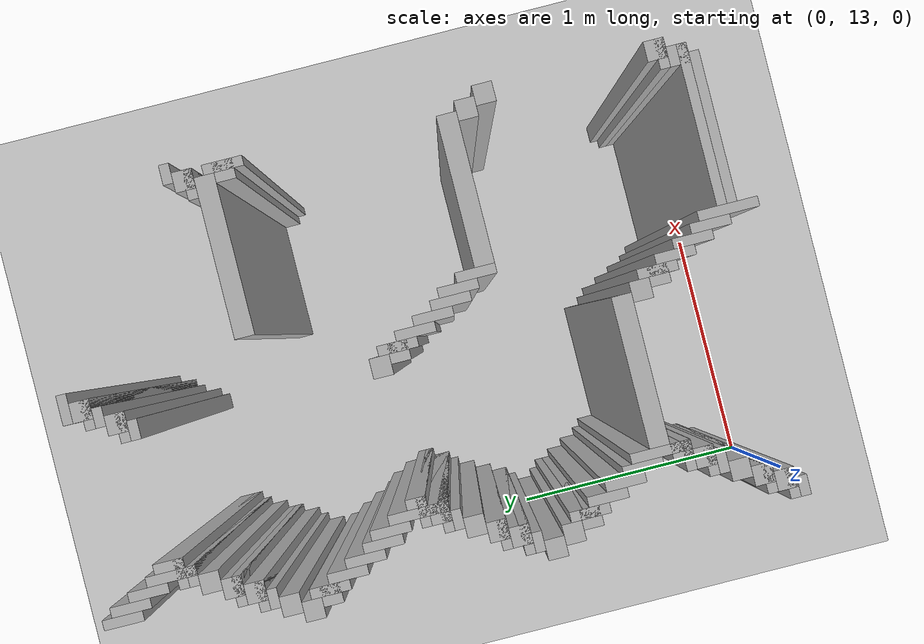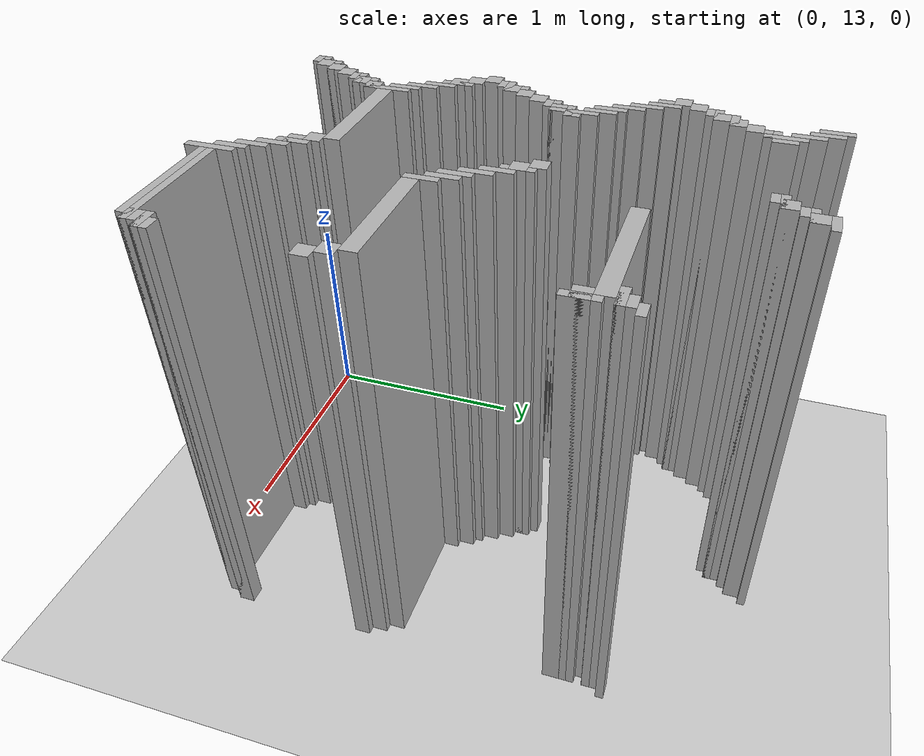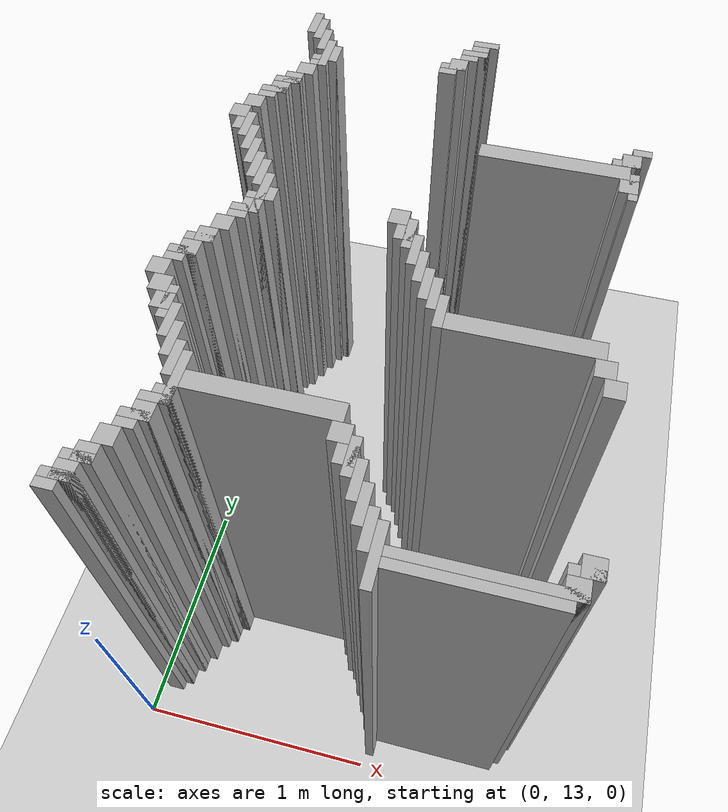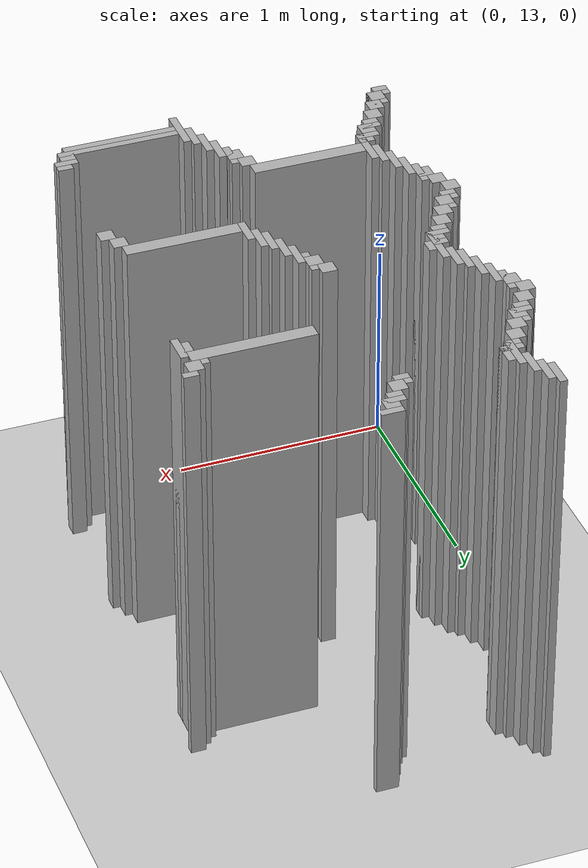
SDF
<sdf version="1.6">
 <world name="slam_world">
  <model name="ground_plane">
   <static>true</static>
   <link name="link">
    <collision name="collision">
     <geometry><plane><normal>0 0 1</normal><size>100 100</size></plane></geometry>
    </collision>
    <visual name="visual">
     <geometry><plane><normal>0 0 1</normal><size>100 100</size></plane></geometry>
     <material>
      <ambient>0.8 0.8 0.8 1</ambient>
      <diffuse>0.8 0.8 0.8 1</diffuse>
      <specular>0.8 0.8 0.8 1</specular>
     </material>
    </visual>
   </link>
  </model>
  <model name="wall_623">
   <static>true</static>
   <pose>0.191415313225058 15.452436194895592 1.0 0 0 0</pose>
   <link name="link">
    <collision name="collision">
     <geometry><box><size>0.03480278422273782 0.13921113689095127 2.0</size></box></geometry>
    </collision>
    <visual name="visual">
     <geometry><box><size>0.03480278422273782 0.13921113689095127 2.0</size></box></geometry>
     <material><ambient>0.5 0.5 0.5 1</ambient><diffuse>0.7 0.7 0.7 1</diffuse></material>
    </visual>
   </link>
  </model>
  <model name="wall_640">
   <static>true</static>
   <pose>0.2262180974477958 15.417633410672853 1.0 0 0 0</pose>
   <link name="link">
    <collision name="collision">
     <geometry><box><size>0.03480278422273782 0.13921113689095127 2.0</size></box></geometry>
    </collision>
    <visual name="visual">
     <geometry><box><size>0.03480278422273782 0.13921113689095127 2.0</size></box></geometry>
     <material><ambient>0.5 0.5 0.5 1</ambient><diffuse>0.7 0.7 0.7 1</diffuse></material>
    </visual>
   </link>
  </model>
  <model name="wall_641">
   <static>true</static>
   <pose>0.9222737819025522 15.46983758700696 1.0 0 0 0</pose>
   <link name="link">
    <collision name="collision">
     <geometry><box><size>0.10440835266821345 0.03480278422273782 2.0</size></box></geometry>
    </collision>
    <visual name="visual">
     <geometry><box><size>0.10440835266821345 0.03480278422273782 2.0</size></box></geometry>
     <material><ambient>0.5 0.5 0.5 1</ambient><diffuse>0.7 0.7 0.7 1</diffuse></material>
    </visual>
   </link>
  </model>
  <model name="wall_657">
   <static>true</static>
   <pose>0.9048723897911832 15.417633410672853 1.0 0 0 0</pose>
   <link name="link">
    <collision name="collision">
     <geometry><box><size>0.06960556844547564 0.06960556844547564 2.0</size></box></geometry>
    </collision>
    <visual name="visual">
     <geometry><box><size>0.06960556844547564 0.06960556844547564 2.0</size></box></geometry>
     <material><ambient>0.5 0.5 0.5 1</ambient><diffuse>0.7 0.7 0.7 1</diffuse></material>
    </visual>
   </link>
  </model>
  <model name="wall_669">
   <static>true</static>
   <pose>0.2610208816705336 15.348027842227378 1.0 0 0 0</pose>
   <link name="link">
    <collision name="collision">
     <geometry><box><size>0.03480278422273782 0.13921113689095127 2.0</size></box></geometry>
    </collision>
    <visual name="visual">
     <geometry><box><size>0.03480278422273782 0.13921113689095127 2.0</size></box></geometry>
     <material><ambient>0.5 0.5 0.5 1</ambient><diffuse>0.7 0.7 0.7 1</diffuse></material>
    </visual>
   </link>
  </model>
  <model name="wall_670">
   <static>true</static>
   <pose>0.8874709976798143 15.400232018561484 1.0 0 0 0</pose>
   <link name="link">
    <collision name="collision">
     <geometry><box><size>0.10440835266821345 0.03480278422273782 2.0</size></box></geometry>
    </collision>
    <visual name="visual">
     <geometry><box><size>0.10440835266821345 0.03480278422273782 2.0</size></box></geometry>
     <material><ambient>0.5 0.5 0.5 1</ambient><diffuse>0.7 0.7 0.7 1</diffuse></material>
    </visual>
   </link>
  </model>
  <model name="wall_686">
   <static>true</static>
   <pose>0.8700696055684455 15.365429234338746 1.0 0 0 0</pose>
   <link name="link">
    <collision name="collision">
     <geometry><box><size>0.06960556844547564 0.03480278422273782 2.0</size></box></geometry>
    </collision>
    <visual name="visual">
     <geometry><box><size>0.06960556844547564 0.03480278422273782 2.0</size></box></geometry>
     <material><ambient>0.5 0.5 0.5 1</ambient><diffuse>0.7 0.7 0.7 1</diffuse></material>
    </visual>
   </link>
  </model>
  <model name="wall_694">
   <static>true</static>
   <pose>0.29582366589327147 15.261020881670532 1.0 0 0 0</pose>
   <link name="link">
    <collision name="collision">
     <geometry><box><size>0.03480278422273782 0.17401392111368907 2.0</size></box></geometry>
    </collision>
    <visual name="visual">
     <geometry><box><size>0.03480278422273782 0.17401392111368907 2.0</size></box></geometry>
     <material><ambient>0.5 0.5 0.5 1</ambient><diffuse>0.7 0.7 0.7 1</diffuse></material>
    </visual>
   </link>
  </model>
  <model name="wall_695">
   <static>true</static>
   <pose>0.8352668213457076 15.31322505800464 1.0 0 0 0</pose>
   <link name="link">
    <collision name="collision">
     <geometry><box><size>0.06960556844547564 0.06960556844547564 2.0</size></box></geometry>
    </collision>
    <visual name="visual">
     <geometry><box><size>0.06960556844547564 0.06960556844547564 2.0</size></box></geometry>
     <material><ambient>0.5 0.5 0.5 1</ambient><diffuse>0.7 0.7 0.7 1</diffuse></material>
    </visual>
   </link>
  </model>
  <model name="wall_711">
   <static>true</static>
   <pose>0.3306264501160093 15.261020881670532 1.0 0 0 0</pose>
   <link name="link">
    <collision name="collision">
     <geometry><box><size>0.03480278422273782 0.10440835266821345 2.0</size></box></geometry>
    </collision>
    <visual name="visual">
     <geometry><box><size>0.03480278422273782 0.10440835266821345 2.0</size></box></geometry>
     <material><ambient>0.5 0.5 0.5 1</ambient><diffuse>0.7 0.7 0.7 1</diffuse></material>
    </visual>
   </link>
  </model>
  <model name="wall_712">
   <static>true</static>
   <pose>0.8178654292343387 15.295823665893272 1.0 0 0 0</pose>
   <link name="link">
    <collision name="collision">
     <geometry><box><size>0.10440835266821345 0.03480278422273782 2.0</size></box></geometry>
    </collision>
    <visual name="visual">
     <geometry><box><size>0.10440835266821345 0.03480278422273782 2.0</size></box></geometry>
     <material><ambient>0.5 0.5 0.5 1</ambient><diffuse>0.7 0.7 0.7 1</diffuse></material>
    </visual>
   </link>
  </model>
  <model name="wall_728">
   <static>true</static>
   <pose>0.8004640371229698 15.261020881670532 1.0 0 0 0</pose>
   <link name="link">
    <collision name="collision">
     <geometry><box><size>0.06960556844547564 0.03480278422273782 2.0</size></box></geometry>
    </collision>
    <visual name="visual">
     <geometry><box><size>0.06960556844547564 0.03480278422273782 2.0</size></box></geometry>
     <material><ambient>0.5 0.5 0.5 1</ambient><diffuse>0.7 0.7 0.7 1</diffuse></material>
    </visual>
   </link>
  </model>
  <model name="wall_738">
   <static>true</static>
   <pose>0.29582366589327147 15.226218097447795 1.0 0 0 0</pose>
   <link name="link">
    <collision name="collision">
     <geometry><box><size>0.10440835266821345 0.03480278422273782 2.0</size></box></geometry>
    </collision>
    <visual name="visual">
     <geometry><box><size>0.10440835266821345 0.03480278422273782 2.0</size></box></geometry>
     <material><ambient>0.5 0.5 0.5 1</ambient><diffuse>0.7 0.7 0.7 1</diffuse></material>
    </visual>
   </link>
  </model>
  <model name="wall_749">
   <static>true</static>
   <pose>0.27842227378190254 15.191415313225058 1.0 0 0 0</pose>
   <link name="link">
    <collision name="collision">
     <geometry><box><size>0.06960556844547564 0.03480278422273782 2.0</size></box></geometry>
    </collision>
    <visual name="visual">
     <geometry><box><size>0.06960556844547564 0.03480278422273782 2.0</size></box></geometry>
     <material><ambient>0.5 0.5 0.5 1</ambient><diffuse>0.7 0.7 0.7 1</diffuse></material>
    </visual>
   </link>
  </model>
  <model name="wall_761">
   <static>true</static>
   <pose>0.24361948955916474 15.139211136890951 1.0 0 0 0</pose>
   <link name="link">
    <collision name="collision">
     <geometry><box><size>0.06960556844547564 0.06960556844547564 2.0</size></box></geometry>
    </collision>
    <visual name="visual">
     <geometry><box><size>0.06960556844547564 0.06960556844547564 2.0</size></box></geometry>
     <material><ambient>0.5 0.5 0.5 1</ambient><diffuse>0.7 0.7 0.7 1</diffuse></material>
    </visual>
   </link>
  </model>
  <model name="wall_773">
   <static>true</static>
   <pose>0.2088167053364269 15.069605568445475 1.0 0 0 0</pose>
   <link name="link">
    <collision name="collision">
     <geometry><box><size>0.06960556844547564 0.06960556844547564 2.0</size></box></geometry>
    </collision>
    <visual name="visual">
     <geometry><box><size>0.06960556844547564 0.06960556844547564 2.0</size></box></geometry>
     <material><ambient>0.5 0.5 0.5 1</ambient><diffuse>0.7 0.7 0.7 1</diffuse></material>
    </visual>
   </link>
  </model>
  <model name="wall_785">
   <static>true</static>
   <pose>0.191415313225058 15.052204176334106 1.0 0 0 0</pose>
   <link name="link">
    <collision name="collision">
     <geometry><box><size>0.10440835266821345 0.03480278422273782 2.0</size></box></geometry>
    </collision>
    <visual name="visual">
     <geometry><box><size>0.10440835266821345 0.03480278422273782 2.0</size></box></geometry>
     <material><ambient>0.5 0.5 0.5 1</ambient><diffuse>0.7 0.7 0.7 1</diffuse></material>
    </visual>
   </link>
  </model>
  <model name="wall_797">
   <static>true</static>
   <pose>0.17401392111368907 15.0 1.0 0 0 0</pose>
   <link name="link">
    <collision name="collision">
     <geometry><box><size>0.06960556844547564 0.06960556844547564 2.0</size></box></geometry>
    </collision>
    <visual name="visual">
     <geometry><box><size>0.06960556844547564 0.06960556844547564 2.0</size></box></geometry>
     <material><ambient>0.5 0.5 0.5 1</ambient><diffuse>0.7 0.7 0.7 1</diffuse></material>
    </visual>
   </link>
  </model>
  <model name="wall_806">
   <static>true</static>
   <pose>0.15661252900232017 14.982598607888631 1.0 0 0 0</pose>
   <link name="link">
    <collision name="collision">
     <geometry><box><size>0.10440835266821345 0.03480278422273782 2.0</size></box></geometry>
    </collision>
    <visual name="visual">
     <geometry><box><size>0.10440835266821345 0.03480278422273782 2.0</size></box></geometry>
     <material><ambient>0.5 0.5 0.5 1</ambient><diffuse>0.7 0.7 0.7 1</diffuse></material>
    </visual>
   </link>
  </model>
  <model name="wall_818">
   <static>true</static>
   <pose>0.13921113689095127 14.947795823665892 1.0 0 0 0</pose>
   <link name="link">
    <collision name="collision">
     <geometry><box><size>0.06960556844547564 0.03480278422273782 2.0</size></box></geometry>
    </collision>
    <visual name="visual">
     <geometry><box><size>0.06960556844547564 0.03480278422273782 2.0</size></box></geometry>
     <material><ambient>0.5 0.5 0.5 1</ambient><diffuse>0.7 0.7 0.7 1</diffuse></material>
    </visual>
   </link>
  </model>
  <model name="wall_819">
   <static>true</static>
   <pose>1.6009280742459395 14.947795823665892 1.0 0 0 0</pose>
   <link name="link">
    <collision name="collision">
     <geometry><box><size>0.06960556844547564 0.03480278422273782 2.0</size></box></geometry>
    </collision>
    <visual name="visual">
     <geometry><box><size>0.06960556844547564 0.03480278422273782 2.0</size></box></geometry>
     <material><ambient>0.5 0.5 0.5 1</ambient><diffuse>0.7 0.7 0.7 1</diffuse></material>
    </visual>
   </link>
  </model>
  <model name="wall_826">
   <static>true</static>
   <pose>0.10440835266821345 14.895591647331786 1.0 0 0 0</pose>
   <link name="link">
    <collision name="collision">
     <geometry><box><size>0.06960556844547564 0.06960556844547564 2.0</size></box></geometry>
    </collision>
    <visual name="visual">
     <geometry><box><size>0.06960556844547564 0.06960556844547564 2.0</size></box></geometry>
     <material><ambient>0.5 0.5 0.5 1</ambient><diffuse>0.7 0.7 0.7 1</diffuse></material>
    </visual>
   </link>
  </model>
  <model name="wall_827">
   <static>true</static>
   <pose>1.5661252900232019 14.895591647331786 1.0 0 0 0</pose>
   <link name="link">
    <collision name="collision">
     <geometry><box><size>0.06960556844547564 0.06960556844547564 2.0</size></box></geometry>
    </collision>
    <visual name="visual">
     <geometry><box><size>0.06960556844547564 0.06960556844547564 2.0</size></box></geometry>
     <material><ambient>0.5 0.5 0.5 1</ambient><diffuse>0.7 0.7 0.7 1</diffuse></material>
    </visual>
   </link>
  </model>
  <model name="wall_838">
   <static>true</static>
   <pose>1.548723897911833 14.878190255220417 1.0 0 0 0</pose>
   <link name="link">
    <collision name="collision">
     <geometry><box><size>0.10440835266821345 0.03480278422273782 2.0</size></box></geometry>
    </collision>
    <visual name="visual">
     <geometry><box><size>0.10440835266821345 0.03480278422273782 2.0</size></box></geometry>
     <material><ambient>0.5 0.5 0.5 1</ambient><diffuse>0.7 0.7 0.7 1</diffuse></material>
    </visual>
   </link>
  </model>
  <model name="wall_843">
   <static>true</static>
   <pose>0.06960556844547564 14.825986078886311 1.0 0 0 0</pose>
   <link name="link">
    <collision name="collision">
     <geometry><box><size>0.06960556844547564 0.06960556844547564 2.0</size></box></geometry>
    </collision>
    <visual name="visual">
     <geometry><box><size>0.06960556844547564 0.06960556844547564 2.0</size></box></geometry>
     <material><ambient>0.5 0.5 0.5 1</ambient><diffuse>0.7 0.7 0.7 1</diffuse></material>
    </visual>
   </link>
  </model>
  <model name="wall_844">
   <static>true</static>
   <pose>1.2877030162412992 14.825986078886311 1.0 0 0 0</pose>
   <link name="link">
    <collision name="collision">
     <geometry><box><size>0.5568445475638051 0.06960556844547564 2.0</size></box></geometry>
    </collision>
    <visual name="visual">
     <geometry><box><size>0.5568445475638051 0.06960556844547564 2.0</size></box></geometry>
     <material><ambient>0.5 0.5 0.5 1</ambient><diffuse>0.7 0.7 0.7 1</diffuse></material>
    </visual>
   </link>
  </model>
  <model name="wall_857">
   <static>true</static>
   <pose>0.12180974477958237 14.756380510440835 1.0 0 0 0</pose>
   <link name="link">
    <collision name="collision">
     <geometry><box><size>0.03480278422273782 0.13921113689095127 2.0</size></box></geometry>
    </collision>
    <visual name="visual">
     <geometry><box><size>0.03480278422273782 0.13921113689095127 2.0</size></box></geometry>
     <material><ambient>0.5 0.5 0.5 1</ambient><diffuse>0.7 0.7 0.7 1</diffuse></material>
    </visual>
   </link>
  </model>
  <model name="wall_858">
   <static>true</static>
   <pose>1.5835266821345706 14.756380510440835 1.0 0 0 0</pose>
   <link name="link">
    <collision name="collision">
     <geometry><box><size>0.03480278422273782 0.13921113689095127 2.0</size></box></geometry>
    </collision>
    <visual name="visual">
     <geometry><box><size>0.03480278422273782 0.13921113689095127 2.0</size></box></geometry>
     <material><ambient>0.5 0.5 0.5 1</ambient><diffuse>0.7 0.7 0.7 1</diffuse></material>
    </visual>
   </link>
  </model>
  <model name="wall_868">
   <static>true</static>
   <pose>0.10440835266821345 14.756380510440835 1.0 0 0 0</pose>
   <link name="link">
    <collision name="collision">
     <geometry><box><size>0.06960556844547564 0.06960556844547564 2.0</size></box></geometry>
    </collision>
    <visual name="visual">
     <geometry><box><size>0.06960556844547564 0.06960556844547564 2.0</size></box></geometry>
     <material><ambient>0.5 0.5 0.5 1</ambient><diffuse>0.7 0.7 0.7 1</diffuse></material>
    </visual>
   </link>
  </model>
  <model name="wall_869">
   <static>true</static>
   <pose>1.5661252900232019 14.756380510440835 1.0 0 0 0</pose>
   <link name="link">
    <collision name="collision">
     <geometry><box><size>0.06960556844547564 0.06960556844547564 2.0</size></box></geometry>
    </collision>
    <visual name="visual">
     <geometry><box><size>0.06960556844547564 0.06960556844547564 2.0</size></box></geometry>
     <material><ambient>0.5 0.5 0.5 1</ambient><diffuse>0.7 0.7 0.7 1</diffuse></material>
    </visual>
   </link>
  </model>
  <model name="wall_880">
   <static>true</static>
   <pose>0.15661252900232017 14.68677494199536 1.0 0 0 0</pose>
   <link name="link">
    <collision name="collision">
     <geometry><box><size>0.03480278422273782 0.13921113689095127 2.0</size></box></geometry>
    </collision>
    <visual name="visual">
     <geometry><box><size>0.03480278422273782 0.13921113689095127 2.0</size></box></geometry>
     <material><ambient>0.5 0.5 0.5 1</ambient><diffuse>0.7 0.7 0.7 1</diffuse></material>
    </visual>
   </link>
  </model>
  <model name="wall_900">
   <static>true</static>
   <pose>0.191415313225058 14.617169373549883 1.0 0 0 0</pose>
   <link name="link">
    <collision name="collision">
     <geometry><box><size>0.03480278422273782 0.13921113689095127 2.0</size></box></geometry>
    </collision>
    <visual name="visual">
     <geometry><box><size>0.03480278422273782 0.13921113689095127 2.0</size></box></geometry>
     <material><ambient>0.5 0.5 0.5 1</ambient><diffuse>0.7 0.7 0.7 1</diffuse></material>
    </visual>
   </link>
  </model>
  <model name="wall_912">
   <static>true</static>
   <pose>0.2262180974477958 14.547563805104408 1.0 0 0 0</pose>
   <link name="link">
    <collision name="collision">
     <geometry><box><size>0.03480278422273782 0.13921113689095127 2.0</size></box></geometry>
    </collision>
    <visual name="visual">
     <geometry><box><size>0.03480278422273782 0.13921113689095127 2.0</size></box></geometry>
     <material><ambient>0.5 0.5 0.5 1</ambient><diffuse>0.7 0.7 0.7 1</diffuse></material>
    </visual>
   </link>
  </model>
  <model name="wall_924">
   <static>true</static>
   <pose>0.2610208816705336 14.512761020881669 1.0 0 0 0</pose>
   <link name="link">
    <collision name="collision">
     <geometry><box><size>0.03480278422273782 0.13921113689095127 2.0</size></box></geometry>
    </collision>
    <visual name="visual">
     <geometry><box><size>0.03480278422273782 0.13921113689095127 2.0</size></box></geometry>
     <material><ambient>0.5 0.5 0.5 1</ambient><diffuse>0.7 0.7 0.7 1</diffuse></material>
    </visual>
   </link>
  </model>
  <model name="wall_943">
   <static>true</static>
   <pose>0.29582366589327147 14.408352668213457 1.0 0 0 0</pose>
   <link name="link">
    <collision name="collision">
     <geometry><box><size>0.03480278422273782 0.2088167053364269 2.0</size></box></geometry>
    </collision>
    <visual name="visual">
     <geometry><box><size>0.03480278422273782 0.2088167053364269 2.0</size></box></geometry>
     <material><ambient>0.5 0.5 0.5 1</ambient><diffuse>0.7 0.7 0.7 1</diffuse></material>
    </visual>
   </link>
  </model>
  <model name="wall_962">
   <static>true</static>
   <pose>0.3306264501160093 14.408352668213457 1.0 0 0 0</pose>
   <link name="link">
    <collision name="collision">
     <geometry><box><size>0.03480278422273782 0.06960556844547564 2.0</size></box></geometry>
    </collision>
    <visual name="visual">
     <geometry><box><size>0.03480278422273782 0.06960556844547564 2.0</size></box></geometry>
     <material><ambient>0.5 0.5 0.5 1</ambient><diffuse>0.7 0.7 0.7 1</diffuse></material>
    </visual>
   </link>
  </model>
  <model name="wall_963">
   <static>true</static>
   <pose>0.8004640371229698 14.408352668213457 1.0 0 0 0</pose>
   <link name="link">
    <collision name="collision">
     <geometry><box><size>0.06960556844547564 0.06960556844547564 2.0</size></box></geometry>
    </collision>
    <visual name="visual">
     <geometry><box><size>0.06960556844547564 0.06960556844547564 2.0</size></box></geometry>
     <material><ambient>0.5 0.5 0.5 1</ambient><diffuse>0.7 0.7 0.7 1</diffuse></material>
    </visual>
   </link>
  </model>
  <model name="wall_977">
   <static>true</static>
   <pose>0.29582366589327147 14.390951276102088 1.0 0 0 0</pose>
   <link name="link">
    <collision name="collision">
     <geometry><box><size>0.10440835266821345 0.03480278422273782 2.0</size></box></geometry>
    </collision>
    <visual name="visual">
     <geometry><box><size>0.10440835266821345 0.03480278422273782 2.0</size></box></geometry>
     <material><ambient>0.5 0.5 0.5 1</ambient><diffuse>0.7 0.7 0.7 1</diffuse></material>
    </visual>
   </link>
  </model>
  <model name="wall_978">
   <static>true</static>
   <pose>0.8526682134570766 14.33874709976798 1.0 0 0 0</pose>
   <link name="link">
    <collision name="collision">
     <geometry><box><size>0.03480278422273782 0.13921113689095127 2.0</size></box></geometry>
    </collision>
    <visual name="visual">
     <geometry><box><size>0.03480278422273782 0.13921113689095127 2.0</size></box></geometry>
     <material><ambient>0.5 0.5 0.5 1</ambient><diffuse>0.7 0.7 0.7 1</diffuse></material>
    </visual>
   </link>
  </model>
  <model name="wall_991">
   <static>true</static>
   <pose>0.27842227378190254 14.33874709976798 1.0 0 0 0</pose>
   <link name="link">
    <collision name="collision">
     <geometry><box><size>0.06960556844547564 0.06960556844547564 2.0</size></box></geometry>
    </collision>
    <visual name="visual">
     <geometry><box><size>0.06960556844547564 0.06960556844547564 2.0</size></box></geometry>
     <material><ambient>0.5 0.5 0.5 1</ambient><diffuse>0.7 0.7 0.7 1</diffuse></material>
    </visual>
   </link>
  </model>
  <model name="wall_992">
   <static>true</static>
   <pose>0.8352668213457076 14.33874709976798 1.0 0 0 0</pose>
   <link name="link">
    <collision name="collision">
     <geometry><box><size>0.06960556844547564 0.06960556844547564 2.0</size></box></geometry>
    </collision>
    <visual name="visual">
     <geometry><box><size>0.06960556844547564 0.06960556844547564 2.0</size></box></geometry>
     <material><ambient>0.5 0.5 0.5 1</ambient><diffuse>0.7 0.7 0.7 1</diffuse></material>
    </visual>
   </link>
  </model>
  <model name="wall_1006">
   <static>true</static>
   <pose>0.2610208816705336 14.321345707656612 1.0 0 0 0</pose>
   <link name="link">
    <collision name="collision">
     <geometry><box><size>0.10440835266821345 0.03480278422273782 2.0</size></box></geometry>
    </collision>
    <visual name="visual">
     <geometry><box><size>0.10440835266821345 0.03480278422273782 2.0</size></box></geometry>
     <material><ambient>0.5 0.5 0.5 1</ambient><diffuse>0.7 0.7 0.7 1</diffuse></material>
    </visual>
   </link>
  </model>
  <model name="wall_1007">
   <static>true</static>
   <pose>0.8874709976798143 14.269141531322505 1.0 0 0 0</pose>
   <link name="link">
    <collision name="collision">
     <geometry><box><size>0.03480278422273782 0.13921113689095127 2.0</size></box></geometry>
    </collision>
    <visual name="visual">
     <geometry><box><size>0.03480278422273782 0.13921113689095127 2.0</size></box></geometry>
     <material><ambient>0.5 0.5 0.5 1</ambient><diffuse>0.7 0.7 0.7 1</diffuse></material>
    </visual>
   </link>
  </model>
  <model name="wall_1021">
   <static>true</static>
   <pose>0.24361948955916474 14.286542923433874 1.0 0 0 0</pose>
   <link name="link">
    <collision name="collision">
     <geometry><box><size>0.06960556844547564 0.03480278422273782 2.0</size></box></geometry>
    </collision>
    <visual name="visual">
     <geometry><box><size>0.06960556844547564 0.03480278422273782 2.0</size></box></geometry>
     <material><ambient>0.5 0.5 0.5 1</ambient><diffuse>0.7 0.7 0.7 1</diffuse></material>
    </visual>
   </link>
  </model>
  <model name="wall_1030">
   <static>true</static>
   <pose>0.2088167053364269 14.234338747099768 1.0 0 0 0</pose>
   <link name="link">
    <collision name="collision">
     <geometry><box><size>0.06960556844547564 0.06960556844547564 2.0</size></box></geometry>
    </collision>
    <visual name="visual">
     <geometry><box><size>0.06960556844547564 0.06960556844547564 2.0</size></box></geometry>
     <material><ambient>0.5 0.5 0.5 1</ambient><diffuse>0.7 0.7 0.7 1</diffuse></material>
    </visual>
   </link>
  </model>
  <model name="wall_1031">
   <static>true</static>
   <pose>0.9222737819025522 14.199535962877029 1.0 0 0 0</pose>
   <link name="link">
    <collision name="collision">
     <geometry><box><size>0.03480278422273782 0.13921113689095127 2.0</size></box></geometry>
    </collision>
    <visual name="visual">
     <geometry><box><size>0.03480278422273782 0.13921113689095127 2.0</size></box></geometry>
     <material><ambient>0.5 0.5 0.5 1</ambient><diffuse>0.7 0.7 0.7 1</diffuse></material>
    </visual>
   </link>
  </model>
  <model name="wall_1045">
   <static>true</static>
   <pose>0.17401392111368907 14.164733178654291 1.0 0 0 0</pose>
   <link name="link">
    <collision name="collision">
     <geometry><box><size>0.06960556844547564 0.06960556844547564 2.0</size></box></geometry>
    </collision>
    <visual name="visual">
     <geometry><box><size>0.06960556844547564 0.06960556844547564 2.0</size></box></geometry>
     <material><ambient>0.5 0.5 0.5 1</ambient><diffuse>0.7 0.7 0.7 1</diffuse></material>
    </visual>
   </link>
  </model>
  <model name="wall_1046">
   <static>true</static>
   <pose>0.95707656612529 14.129930394431554 1.0 0 0 0</pose>
   <link name="link">
    <collision name="collision">
     <geometry><box><size>0.03480278422273782 0.13921113689095127 2.0</size></box></geometry>
    </collision>
    <visual name="visual">
     <geometry><box><size>0.03480278422273782 0.13921113689095127 2.0</size></box></geometry>
     <material><ambient>0.5 0.5 0.5 1</ambient><diffuse>0.7 0.7 0.7 1</diffuse></material>
    </visual>
   </link>
  </model>
  <model name="wall_1060">
   <static>true</static>
   <pose>0.15661252900232017 14.147331786542923 1.0 0 0 0</pose>
   <link name="link">
    <collision name="collision">
     <geometry><box><size>0.10440835266821345 0.03480278422273782 2.0</size></box></geometry>
    </collision>
    <visual name="visual">
     <geometry><box><size>0.10440835266821345 0.03480278422273782 2.0</size></box></geometry>
     <material><ambient>0.5 0.5 0.5 1</ambient><diffuse>0.7 0.7 0.7 1</diffuse></material>
    </visual>
   </link>
  </model>
  <model name="wall_1061">
   <static>true</static>
   <pose>0.9918793503480278 14.095127610208817 1.0 0 0 0</pose>
   <link name="link">
    <collision name="collision">
     <geometry><box><size>0.03480278422273782 0.13921113689095127 2.0</size></box></geometry>
    </collision>
    <visual name="visual">
     <geometry><box><size>0.03480278422273782 0.13921113689095127 2.0</size></box></geometry>
     <material><ambient>0.5 0.5 0.5 1</ambient><diffuse>0.7 0.7 0.7 1</diffuse></material>
    </visual>
   </link>
  </model>
  <model name="wall_1075">
   <static>true</static>
   <pose>0.13921113689095127 14.095127610208817 1.0 0 0 0</pose>
   <link name="link">
    <collision name="collision">
     <geometry><box><size>0.06960556844547564 0.06960556844547564 2.0</size></box></geometry>
    </collision>
    <visual name="visual">
     <geometry><box><size>0.06960556844547564 0.06960556844547564 2.0</size></box></geometry>
     <material><ambient>0.5 0.5 0.5 1</ambient><diffuse>0.7 0.7 0.7 1</diffuse></material>
    </visual>
   </link>
  </model>
  <model name="wall_1083">
   <static>true</static>
   <pose>0.12180974477958237 14.077726218097448 1.0 0 0 0</pose>
   <link name="link">
    <collision name="collision">
     <geometry><box><size>0.10440835266821345 0.03480278422273782 2.0</size></box></geometry>
    </collision>
    <visual name="visual">
     <geometry><box><size>0.10440835266821345 0.03480278422273782 2.0</size></box></geometry>
     <material><ambient>0.5 0.5 0.5 1</ambient><diffuse>0.7 0.7 0.7 1</diffuse></material>
    </visual>
   </link>
  </model>
  <model name="wall_1084">
   <static>true</static>
   <pose>1.0266821345707655 14.02552204176334 1.0 0 0 0</pose>
   <link name="link">
    <collision name="collision">
     <geometry><box><size>0.03480278422273782 0.13921113689095127 2.0</size></box></geometry>
    </collision>
    <visual name="visual">
     <geometry><box><size>0.03480278422273782 0.13921113689095127 2.0</size></box></geometry>
     <material><ambient>0.5 0.5 0.5 1</ambient><diffuse>0.7 0.7 0.7 1</diffuse></material>
    </visual>
   </link>
  </model>
  <model name="wall_1098">
   <static>true</static>
   <pose>0.10440835266821345 14.042923433874709 1.0 0 0 0</pose>
   <link name="link">
    <collision name="collision">
     <geometry><box><size>0.06960556844547564 0.03480278422273782 2.0</size></box></geometry>
    </collision>
    <visual name="visual">
     <geometry><box><size>0.06960556844547564 0.03480278422273782 2.0</size></box></geometry>
     <material><ambient>0.5 0.5 0.5 1</ambient><diffuse>0.7 0.7 0.7 1</diffuse></material>
    </visual>
   </link>
  </model>
  <model name="wall_1106">
   <static>true</static>
   <pose>0.06960556844547564 13.990719257540603 1.0 0 0 0</pose>
   <link name="link">
    <collision name="collision">
     <geometry><box><size>0.06960556844547564 0.06960556844547564 2.0</size></box></geometry>
    </collision>
    <visual name="visual">
     <geometry><box><size>0.06960556844547564 0.06960556844547564 2.0</size></box></geometry>
     <material><ambient>0.5 0.5 0.5 1</ambient><diffuse>0.7 0.7 0.7 1</diffuse></material>
    </visual>
   </link>
  </model>
  <model name="wall_1107">
   <static>true</static>
   <pose>1.3051044083526682 13.990719257540603 1.0 0 0 0</pose>
   <link name="link">
    <collision name="collision">
     <geometry><box><size>0.5220417633410672 0.06960556844547564 2.0</size></box></geometry>
    </collision>
    <visual name="visual">
     <geometry><box><size>0.5220417633410672 0.06960556844547564 2.0</size></box></geometry>
     <material><ambient>0.5 0.5 0.5 1</ambient><diffuse>0.7 0.7 0.7 1</diffuse></material>
    </visual>
   </link>
  </model>
  <model name="wall_1120">
   <static>true</static>
   <pose>0.10440835266821345 13.921113689095128 1.0 0 0 0</pose>
   <link name="link">
    <collision name="collision">
     <geometry><box><size>0.06960556844547564 0.06960556844547564 2.0</size></box></geometry>
    </collision>
    <visual name="visual">
     <geometry><box><size>0.06960556844547564 0.06960556844547564 2.0</size></box></geometry>
     <material><ambient>0.5 0.5 0.5 1</ambient><diffuse>0.7 0.7 0.7 1</diffuse></material>
    </visual>
   </link>
  </model>
  <model name="wall_1121">
   <static>true</static>
   <pose>1.5661252900232019 13.921113689095128 1.0 0 0 0</pose>
   <link name="link">
    <collision name="collision">
     <geometry><box><size>0.06960556844547564 0.06960556844547564 2.0</size></box></geometry>
    </collision>
    <visual name="visual">
     <geometry><box><size>0.06960556844547564 0.06960556844547564 2.0</size></box></geometry>
     <material><ambient>0.5 0.5 0.5 1</ambient><diffuse>0.7 0.7 0.7 1</diffuse></material>
    </visual>
   </link>
  </model>
  <model name="wall_1135">
   <static>true</static>
   <pose>0.15661252900232017 13.851508120649651 1.0 0 0 0</pose>
   <link name="link">
    <collision name="collision">
     <geometry><box><size>0.03480278422273782 0.13921113689095127 2.0</size></box></geometry>
    </collision>
    <visual name="visual">
     <geometry><box><size>0.03480278422273782 0.13921113689095127 2.0</size></box></geometry>
     <material><ambient>0.5 0.5 0.5 1</ambient><diffuse>0.7 0.7 0.7 1</diffuse></material>
    </visual>
   </link>
  </model>
  <model name="wall_1150">
   <static>true</static>
   <pose>0.13921113689095127 13.851508120649651 1.0 0 0 0</pose>
   <link name="link">
    <collision name="collision">
     <geometry><box><size>0.06960556844547564 0.06960556844547564 2.0</size></box></geometry>
    </collision>
    <visual name="visual">
     <geometry><box><size>0.06960556844547564 0.06960556844547564 2.0</size></box></geometry>
     <material><ambient>0.5 0.5 0.5 1</ambient><diffuse>0.7 0.7 0.7 1</diffuse></material>
    </visual>
   </link>
  </model>
  <model name="wall_1151">
   <static>true</static>
   <pose>1.6009280742459395 13.851508120649651 1.0 0 0 0</pose>
   <link name="link">
    <collision name="collision">
     <geometry><box><size>0.06960556844547564 0.06960556844547564 2.0</size></box></geometry>
    </collision>
    <visual name="visual">
     <geometry><box><size>0.06960556844547564 0.06960556844547564 2.0</size></box></geometry>
     <material><ambient>0.5 0.5 0.5 1</ambient><diffuse>0.7 0.7 0.7 1</diffuse></material>
    </visual>
   </link>
  </model>
  <model name="wall_1165">
   <static>true</static>
   <pose>0.191415313225058 13.781902552204176 1.0 0 0 0</pose>
   <link name="link">
    <collision name="collision">
     <geometry><box><size>0.03480278422273782 0.13921113689095127 2.0</size></box></geometry>
    </collision>
    <visual name="visual">
     <geometry><box><size>0.03480278422273782 0.13921113689095127 2.0</size></box></geometry>
     <material><ambient>0.5 0.5 0.5 1</ambient><diffuse>0.7 0.7 0.7 1</diffuse></material>
    </visual>
   </link>
  </model>
  <model name="wall_1187">
   <static>true</static>
   <pose>0.2262180974477958 13.7122969837587 1.0 0 0 0</pose>
   <link name="link">
    <collision name="collision">
     <geometry><box><size>0.03480278422273782 0.13921113689095127 2.0</size></box></geometry>
    </collision>
    <visual name="visual">
     <geometry><box><size>0.03480278422273782 0.13921113689095127 2.0</size></box></geometry>
     <material><ambient>0.5 0.5 0.5 1</ambient><diffuse>0.7 0.7 0.7 1</diffuse></material>
    </visual>
   </link>
  </model>
  <model name="wall_1202">
   <static>true</static>
   <pose>0.2610208816705336 13.642691415313225 1.0 0 0 0</pose>
   <link name="link">
    <collision name="collision">
     <geometry><box><size>0.03480278422273782 0.13921113689095127 2.0</size></box></geometry>
    </collision>
    <visual name="visual">
     <geometry><box><size>0.03480278422273782 0.13921113689095127 2.0</size></box></geometry>
     <material><ambient>0.5 0.5 0.5 1</ambient><diffuse>0.7 0.7 0.7 1</diffuse></material>
    </visual>
   </link>
  </model>
  <model name="wall_1217">
   <static>true</static>
   <pose>0.29582366589327147 13.573085846867748 1.0 0 0 0</pose>
   <link name="link">
    <collision name="collision">
     <geometry><box><size>0.03480278422273782 0.2088167053364269 2.0</size></box></geometry>
    </collision>
    <visual name="visual">
     <geometry><box><size>0.03480278422273782 0.2088167053364269 2.0</size></box></geometry>
     <material><ambient>0.5 0.5 0.5 1</ambient><diffuse>0.7 0.7 0.7 1</diffuse></material>
    </visual>
   </link>
  </model>
  <model name="wall_1239">
   <static>true</static>
   <pose>0.574245939675174 13.573085846867748 1.0 0 0 0</pose>
   <link name="link">
    <collision name="collision">
     <geometry><box><size>0.5220417633410672 0.06960556844547564 2.0</size></box></geometry>
    </collision>
    <visual name="visual">
     <geometry><box><size>0.5220417633410672 0.06960556844547564 2.0</size></box></geometry>
     <material><ambient>0.5 0.5 0.5 1</ambient><diffuse>0.7 0.7 0.7 1</diffuse></material>
    </visual>
   </link>
  </model>
  <model name="wall_1258">
   <static>true</static>
   <pose>0.27842227378190254 13.503480278422273 1.0 0 0 0</pose>
   <link name="link">
    <collision name="collision">
     <geometry><box><size>0.06960556844547564 0.06960556844547564 2.0</size></box></geometry>
    </collision>
    <visual name="visual">
     <geometry><box><size>0.06960556844547564 0.06960556844547564 2.0</size></box></geometry>
     <material><ambient>0.5 0.5 0.5 1</ambient><diffuse>0.7 0.7 0.7 1</diffuse></material>
    </visual>
   </link>
  </model>
  <model name="wall_1259">
   <static>true</static>
   <pose>0.8352668213457076 13.503480278422273 1.0 0 0 0</pose>
   <link name="link">
    <collision name="collision">
     <geometry><box><size>0.06960556844547564 0.06960556844547564 2.0</size></box></geometry>
    </collision>
    <visual name="visual">
     <geometry><box><size>0.06960556844547564 0.06960556844547564 2.0</size></box></geometry>
     <material><ambient>0.5 0.5 0.5 1</ambient><diffuse>0.7 0.7 0.7 1</diffuse></material>
    </visual>
   </link>
  </model>
  <model name="wall_1270">
   <static>true</static>
   <pose>0.2610208816705336 13.486078886310905 1.0 0 0 0</pose>
   <link name="link">
    <collision name="collision">
     <geometry><box><size>0.10440835266821345 0.03480278422273782 2.0</size></box></geometry>
    </collision>
    <visual name="visual">
     <geometry><box><size>0.10440835266821345 0.03480278422273782 2.0</size></box></geometry>
     <material><ambient>0.5 0.5 0.5 1</ambient><diffuse>0.7 0.7 0.7 1</diffuse></material>
    </visual>
   </link>
  </model>
  <model name="wall_1271">
   <static>true</static>
   <pose>0.8874709976798143 13.433874709976797 1.0 0 0 0</pose>
   <link name="link">
    <collision name="collision">
     <geometry><box><size>0.03480278422273782 0.13921113689095127 2.0</size></box></geometry>
    </collision>
    <visual name="visual">
     <geometry><box><size>0.03480278422273782 0.13921113689095127 2.0</size></box></geometry>
     <material><ambient>0.5 0.5 0.5 1</ambient><diffuse>0.7 0.7 0.7 1</diffuse></material>
    </visual>
   </link>
  </model>
  <model name="wall_1282">
   <static>true</static>
   <pose>0.24361948955916474 13.433874709976797 1.0 0 0 0</pose>
   <link name="link">
    <collision name="collision">
     <geometry><box><size>0.06960556844547564 0.06960556844547564 2.0</size></box></geometry>
    </collision>
    <visual name="visual">
     <geometry><box><size>0.06960556844547564 0.06960556844547564 2.0</size></box></geometry>
     <material><ambient>0.5 0.5 0.5 1</ambient><diffuse>0.7 0.7 0.7 1</diffuse></material>
    </visual>
   </link>
  </model>
  <model name="wall_1283">
   <static>true</static>
   <pose>0.8700696055684455 13.433874709976797 1.0 0 0 0</pose>
   <link name="link">
    <collision name="collision">
     <geometry><box><size>0.06960556844547564 0.06960556844547564 2.0</size></box></geometry>
    </collision>
    <visual name="visual">
     <geometry><box><size>0.06960556844547564 0.06960556844547564 2.0</size></box></geometry>
     <material><ambient>0.5 0.5 0.5 1</ambient><diffuse>0.7 0.7 0.7 1</diffuse></material>
    </visual>
   </link>
  </model>
  <model name="wall_1294">
   <static>true</static>
   <pose>0.2262180974477958 13.416473317865428 1.0 0 0 0</pose>
   <link name="link">
    <collision name="collision">
     <geometry><box><size>0.10440835266821345 0.03480278422273782 2.0</size></box></geometry>
    </collision>
    <visual name="visual">
     <geometry><box><size>0.10440835266821345 0.03480278422273782 2.0</size></box></geometry>
     <material><ambient>0.5 0.5 0.5 1</ambient><diffuse>0.7 0.7 0.7 1</diffuse></material>
    </visual>
   </link>
  </model>
  <model name="wall_1295">
   <static>true</static>
   <pose>0.9222737819025522 13.364269141531322 1.0 0 0 0</pose>
   <link name="link">
    <collision name="collision">
     <geometry><box><size>0.03480278422273782 0.13921113689095127 2.0</size></box></geometry>
    </collision>
    <visual name="visual">
     <geometry><box><size>0.03480278422273782 0.13921113689095127 2.0</size></box></geometry>
     <material><ambient>0.5 0.5 0.5 1</ambient><diffuse>0.7 0.7 0.7 1</diffuse></material>
    </visual>
   </link>
  </model>
  <model name="wall_1306">
   <static>true</static>
   <pose>0.2088167053364269 13.38167053364269 1.0 0 0 0</pose>
   <link name="link">
    <collision name="collision">
     <geometry><box><size>0.06960556844547564 0.03480278422273782 2.0</size></box></geometry>
    </collision>
    <visual name="visual">
     <geometry><box><size>0.06960556844547564 0.03480278422273782 2.0</size></box></geometry>
     <material><ambient>0.5 0.5 0.5 1</ambient><diffuse>0.7 0.7 0.7 1</diffuse></material>
    </visual>
   </link>
  </model>
  <model name="wall_1312">
   <static>true</static>
   <pose>0.17401392111368907 13.329466357308585 1.0 0 0 0</pose>
   <link name="link">
    <collision name="collision">
     <geometry><box><size>0.06960556844547564 0.06960556844547564 2.0</size></box></geometry>
    </collision>
    <visual name="visual">
     <geometry><box><size>0.06960556844547564 0.06960556844547564 2.0</size></box></geometry>
     <material><ambient>0.5 0.5 0.5 1</ambient><diffuse>0.7 0.7 0.7 1</diffuse></material>
    </visual>
   </link>
  </model>
  <model name="wall_1313">
   <static>true</static>
   <pose>0.95707656612529 13.294663573085847 1.0 0 0 0</pose>
   <link name="link">
    <collision name="collision">
     <geometry><box><size>0.03480278422273782 0.13921113689095127 2.0</size></box></geometry>
    </collision>
    <visual name="visual">
     <geometry><box><size>0.03480278422273782 0.13921113689095127 2.0</size></box></geometry>
     <material><ambient>0.5 0.5 0.5 1</ambient><diffuse>0.7 0.7 0.7 1</diffuse></material>
    </visual>
   </link>
  </model>
  <model name="wall_1324">
   <static>true</static>
   <pose>0.13921113689095127 13.259860788863108 1.0 0 0 0</pose>
   <link name="link">
    <collision name="collision">
     <geometry><box><size>0.06960556844547564 0.06960556844547564 2.0</size></box></geometry>
    </collision>
    <visual name="visual">
     <geometry><box><size>0.06960556844547564 0.06960556844547564 2.0</size></box></geometry>
     <material><ambient>0.5 0.5 0.5 1</ambient><diffuse>0.7 0.7 0.7 1</diffuse></material>
    </visual>
   </link>
  </model>
  <model name="wall_1325">
   <static>true</static>
   <pose>0.9918793503480278 13.22505800464037 1.0 0 0 0</pose>
   <link name="link">
    <collision name="collision">
     <geometry><box><size>0.03480278422273782 0.13921113689095127 2.0</size></box></geometry>
    </collision>
    <visual name="visual">
     <geometry><box><size>0.03480278422273782 0.13921113689095127 2.0</size></box></geometry>
     <material><ambient>0.5 0.5 0.5 1</ambient><diffuse>0.7 0.7 0.7 1</diffuse></material>
    </visual>
   </link>
  </model>
  <model name="wall_1326">
   <static>true</static>
   <pose>1.6009280742459395 13.259860788863108 1.0 0 0 0</pose>
   <link name="link">
    <collision name="collision">
     <geometry><box><size>0.06960556844547564 0.06960556844547564 2.0</size></box></geometry>
    </collision>
    <visual name="visual">
     <geometry><box><size>0.06960556844547564 0.06960556844547564 2.0</size></box></geometry>
     <material><ambient>0.5 0.5 0.5 1</ambient><diffuse>0.7 0.7 0.7 1</diffuse></material>
    </visual>
   </link>
  </model>
  <model name="wall_1336">
   <static>true</static>
   <pose>0.12180974477958237 13.24245939675174 1.0 0 0 0</pose>
   <link name="link">
    <collision name="collision">
     <geometry><box><size>0.10440835266821345 0.03480278422273782 2.0</size></box></geometry>
    </collision>
    <visual name="visual">
     <geometry><box><size>0.10440835266821345 0.03480278422273782 2.0</size></box></geometry>
     <material><ambient>0.5 0.5 0.5 1</ambient><diffuse>0.7 0.7 0.7 1</diffuse></material>
    </visual>
   </link>
  </model>
  <model name="wall_1337">
   <static>true</static>
   <pose>1.0266821345707655 13.155452436194896 1.0 0 0 0</pose>
   <link name="link">
    <collision name="collision">
     <geometry><box><size>0.03480278422273782 0.2088167053364269 2.0</size></box></geometry>
    </collision>
    <visual name="visual">
     <geometry><box><size>0.03480278422273782 0.2088167053364269 2.0</size></box></geometry>
     <material><ambient>0.5 0.5 0.5 1</ambient><diffuse>0.7 0.7 0.7 1</diffuse></material>
    </visual>
   </link>
  </model>
  <model name="wall_1338">
   <static>true</static>
   <pose>1.5835266821345706 13.24245939675174 1.0 0 0 0</pose>
   <link name="link">
    <collision name="collision">
     <geometry><box><size>0.10440835266821345 0.03480278422273782 2.0</size></box></geometry>
    </collision>
    <visual name="visual">
     <geometry><box><size>0.10440835266821345 0.03480278422273782 2.0</size></box></geometry>
     <material><ambient>0.5 0.5 0.5 1</ambient><diffuse>0.7 0.7 0.7 1</diffuse></material>
    </visual>
   </link>
  </model>
  <model name="wall_1348">
   <static>true</static>
   <pose>0.10440835266821345 13.190255220417633 1.0 0 0 0</pose>
   <link name="link">
    <collision name="collision">
     <geometry><box><size>0.06960556844547564 0.06960556844547564 2.0</size></box></geometry>
    </collision>
    <visual name="visual">
     <geometry><box><size>0.06960556844547564 0.06960556844547564 2.0</size></box></geometry>
     <material><ambient>0.5 0.5 0.5 1</ambient><diffuse>0.7 0.7 0.7 1</diffuse></material>
    </visual>
   </link>
  </model>
  <model name="wall_1349">
   <static>true</static>
   <pose>1.5661252900232019 13.190255220417633 1.0 0 0 0</pose>
   <link name="link">
    <collision name="collision">
     <geometry><box><size>0.06960556844547564 0.06960556844547564 2.0</size></box></geometry>
    </collision>
    <visual name="visual">
     <geometry><box><size>0.06960556844547564 0.06960556844547564 2.0</size></box></geometry>
     <material><ambient>0.5 0.5 0.5 1</ambient><diffuse>0.7 0.7 0.7 1</diffuse></material>
    </visual>
   </link>
  </model>
  <model name="wall_1354">
   <static>true</static>
   <pose>0.08700696055684454 13.172853828306264 1.0 0 0 0</pose>
   <link name="link">
    <collision name="collision">
     <geometry><box><size>0.10440835266821345 0.03480278422273782 2.0</size></box></geometry>
    </collision>
    <visual name="visual">
     <geometry><box><size>0.10440835266821345 0.03480278422273782 2.0</size></box></geometry>
     <material><ambient>0.5 0.5 0.5 1</ambient><diffuse>0.7 0.7 0.7 1</diffuse></material>
    </visual>
   </link>
  </model>
  <model name="wall_1355">
   <static>true</static>
   <pose>1.322505800464037 13.172853828306264 1.0 0 0 0</pose>
   <link name="link">
    <collision name="collision">
     <geometry><box><size>0.5568445475638051 0.03480278422273782 2.0</size></box></geometry>
    </collision>
    <visual name="visual">
     <geometry><box><size>0.5568445475638051 0.03480278422273782 2.0</size></box></geometry>
     <material><ambient>0.5 0.5 0.5 1</ambient><diffuse>0.7 0.7 0.7 1</diffuse></material>
    </visual>
   </link>
  </model>
  <model name="wall_1366">
   <static>true</static>
   <pose>0.06960556844547564 13.138051044083527 1.0 0 0 0</pose>
   <link name="link">
    <collision name="collision">
     <geometry><box><size>0.06960556844547564 0.03480278422273782 2.0</size></box></geometry>
    </collision>
    <visual name="visual">
     <geometry><box><size>0.06960556844547564 0.03480278422273782 2.0</size></box></geometry>
     <material><ambient>0.5 0.5 0.5 1</ambient><diffuse>0.7 0.7 0.7 1</diffuse></material>
    </visual>
   </link>
  </model>
  <model name="wall_1367">
   <static>true</static>
   <pose>1.3051044083526682 13.138051044083527 1.0 0 0 0</pose>
   <link name="link">
    <collision name="collision">
     <geometry><box><size>0.5220417633410672 0.03480278422273782 2.0</size></box></geometry>
    </collision>
    <visual name="visual">
     <geometry><box><size>0.5220417633410672 0.03480278422273782 2.0</size></box></geometry>
     <material><ambient>0.5 0.5 0.5 1</ambient><diffuse>0.7 0.7 0.7 1</diffuse></material>
    </visual>
   </link>
  </model>
 </world>
</sdf>
